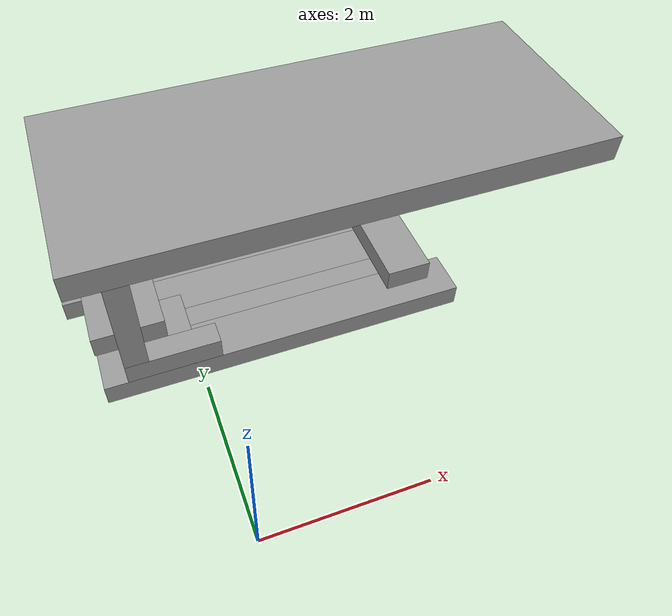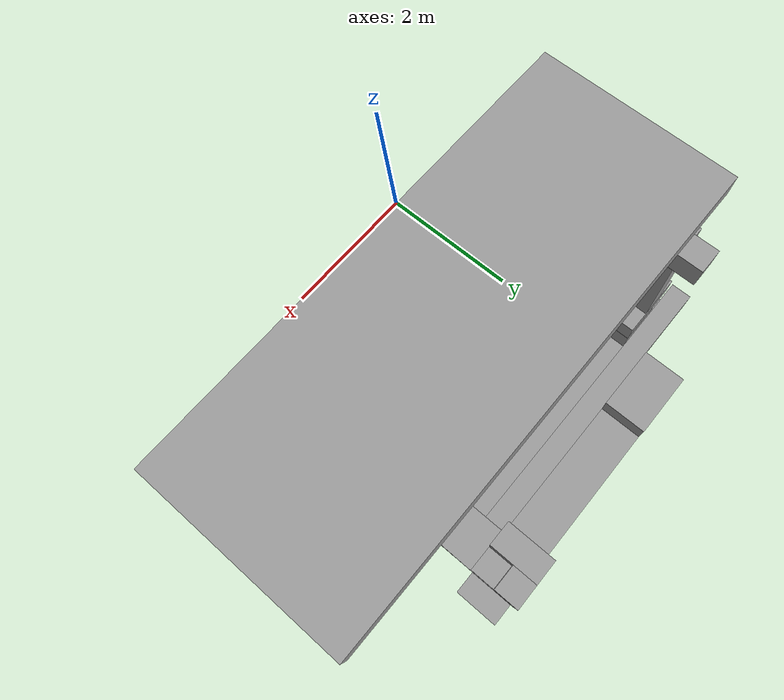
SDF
<sdf version="1.6">
 <world name="bt_world">
  <include><uri>model://sun</uri></include>
  <model name="obstacle_1927">
   <static>true</static>
   <pose>0.75 4.05 -0.15 0 0 0</pose>
   <link name="link">
    <collision name="collision"><geometry><box><size>4.5 0.3 0.3</size></box></geometry></collision>
    <visual name="visual">
     <geometry><box><size>4.5 0.3 0.3</size></box></geometry>
     <material><ambient>0.5 0.5 0.5 1</ambient><diffuse>0.6 0.6 0.6 1</diffuse></material>
    </visual>
   </link>
  </model>
  <model name="obstacle_1985">
   <static>true</static>
   <pose>1.65 2.6999999999999997 2.85 0 0 0</pose>
   <link name="link">
    <collision name="collision"><geometry><box><size>5.7 2.4 0.3</size></box></geometry></collision>
    <visual name="visual">
     <geometry><box><size>5.7 2.4 0.3</size></box></geometry>
     <material><ambient>0.5 0.5 0.5 1</ambient><diffuse>0.6 0.6 0.6 1</diffuse></material>
    </visual>
   </link>
  </model>
  <model name="obstacle_1990">
   <static>true</static>
   <pose>1.2 2.6999999999999997 -0.15 0 0 0</pose>
   <link name="link">
    <collision name="collision"><geometry><box><size>4.8 0.6 0.3</size></box></geometry></collision>
    <visual name="visual">
     <geometry><box><size>4.8 0.6 0.3</size></box></geometry>
     <material><ambient>0.5 0.5 0.5 1</ambient><diffuse>0.6 0.6 0.6 1</diffuse></material>
    </visual>
   </link>
  </model>
  <model name="obstacle_1991">
   <static>true</static>
   <pose>-0.75 3.3 0.44999999999999996 0 0 0</pose>
   <link name="link">
    <collision name="collision">
     <geometry><box><size>0.8999999999999999 1.2 0.3</size></box></geometry>
    </collision>
    <visual name="visual">
     <geometry><box><size>0.8999999999999999 1.2 0.3</size></box></geometry>
     <material><ambient>0.5 0.5 0.5 1</ambient><diffuse>0.6 0.6 0.6 1</diffuse></material>
    </visual>
   </link>
  </model>
  <model name="obstacle_1992">
   <static>true</static>
   <pose>-0.75 3.4499999999999997 -0.15 0 0 0</pose>
   <link name="link">
    <collision name="collision">
     <geometry><box><size>0.8999999999999999 0.8999999999999999 0.3</size></box></geometry>
    </collision>
    <visual name="visual">
     <geometry><box><size>0.8999999999999999 0.8999999999999999 0.3</size></box></geometry>
     <material><ambient>0.5 0.5 0.5 1</ambient><diffuse>0.6 0.6 0.6 1</diffuse></material>
    </visual>
   </link>
  </model>
  <model name="obstacle_2063">
   <static>true</static>
   <pose>-0.3 2.55 0.15 0 0 0</pose>
   <link name="link">
    <collision name="collision"><geometry><box><size>1.2 0.3 0.3</size></box></geometry></collision>
    <visual name="visual">
     <geometry><box><size>1.2 0.3 0.3</size></box></geometry>
     <material><ambient>0.5 0.5 0.5 1</ambient><diffuse>0.6 0.6 0.6 1</diffuse></material>
    </visual>
   </link>
  </model>
  <model name="obstacle_2064">
   <static>true</static>
   <pose>-0.75 2.55 1.3499999999999999 0 0 0</pose>
   <link name="link">
    <collision name="collision"><geometry><box><size>0.3 0.3 2.1</size></box></geometry></collision>
    <visual name="visual">
     <geometry><box><size>0.3 0.3 2.1</size></box></geometry>
     <material><ambient>0.5 0.5 0.5 1</ambient><diffuse>0.6 0.6 0.6 1</diffuse></material>
    </visual>
   </link>
  </model>
  <model name="obstacle_2065">
   <static>true</static>
   <pose>-0.75 3.3 -0.44999999999999996 0 0 0</pose>
   <link name="link">
    <collision name="collision"><geometry><box><size>0.3 1.2 0.3</size></box></geometry></collision>
    <visual name="visual">
     <geometry><box><size>0.3 1.2 0.3</size></box></geometry>
     <material><ambient>0.5 0.5 0.5 1</ambient><diffuse>0.6 0.6 0.6 1</diffuse></material>
    </visual>
   </link>
  </model>
  <model name="obstacle_2066">
   <static>true</static>
   <pose>-0.44999999999999996 3.0 0.15 0 0 0</pose>
   <link name="link">
    <collision name="collision">
     <geometry><box><size>0.8999999999999999 0.6 0.3</size></box></geometry>
    </collision>
    <visual name="visual">
     <geometry><box><size>0.8999999999999999 0.6 0.3</size></box></geometry>
     <material><ambient>0.5 0.5 0.5 1</ambient><diffuse>0.6 0.6 0.6 1</diffuse></material>
    </visual>
   </link>
  </model>
  <model name="obstacle_2067">
   <static>true</static>
   <pose>-0.75 3.3 1.3499999999999999 0 0 0</pose>
   <link name="link">
    <collision name="collision"><geometry><box><size>0.3 1.2 1.5</size></box></geometry></collision>
    <visual name="visual">
     <geometry><box><size>0.3 1.2 1.5</size></box></geometry>
     <material><ambient>0.5 0.5 0.5 1</ambient><diffuse>0.6 0.6 0.6 1</diffuse></material>
    </visual>
   </link>
  </model>
  <model name="obstacle_2068">
   <static>true</static>
   <pose>-0.75 2.85 2.25 0 0 0</pose>
   <link name="link">
    <collision name="collision"><geometry><box><size>0.3 0.3 0.3</size></box></geometry></collision>
    <visual name="visual">
     <geometry><box><size>0.3 0.3 0.3</size></box></geometry>
     <material><ambient>0.5 0.5 0.5 1</ambient><diffuse>0.6 0.6 0.6 1</diffuse></material>
    </visual>
   </link>
  </model>
  <model name="obstacle_2069">
   <static>true</static>
   <pose>-0.6 3.5999999999999996 0.15 0 0 0</pose>
   <link name="link">
    <collision name="collision"><geometry><box><size>0.6 0.6 0.3</size></box></geometry></collision>
    <visual name="visual">
     <geometry><box><size>0.6 0.6 0.3</size></box></geometry>
     <material><ambient>0.5 0.5 0.5 1</ambient><diffuse>0.6 0.6 0.6 1</diffuse></material>
    </visual>
   </link>
  </model>
  <model name="obstacle_2070">
   <static>true</static>
   <pose>-0.75 3.5999999999999996 2.25 0 0 0</pose>
   <link name="link">
    <collision name="collision"><geometry><box><size>0.3 0.6 0.3</size></box></geometry></collision>
    <visual name="visual">
     <geometry><box><size>0.3 0.6 0.3</size></box></geometry>
     <material><ambient>0.5 0.5 0.5 1</ambient><diffuse>0.6 0.6 0.6 1</diffuse></material>
    </visual>
   </link>
  </model>
  <model name="obstacle_2106">
   <static>true</static>
   <pose>-0.44999999999999996 3.4499999999999997 2.55 0 0 0</pose>
   <link name="link">
    <collision name="collision"><geometry><box><size>0.3 1.5 0.3</size></box></geometry></collision>
    <visual name="visual">
     <geometry><box><size>0.3 1.5 0.3</size></box></geometry>
     <material><ambient>0.5 0.5 0.5 1</ambient><diffuse>0.6 0.6 0.6 1</diffuse></material>
    </visual>
   </link>
  </model>
  <model name="obstacle_2133">
   <static>true</static>
   <pose>1.5 3.5999999999999996 -0.15 0 0 0</pose>
   <link name="link">
    <collision name="collision">
     <geometry><box><size>3.5999999999999996 0.6 0.3</size></box></geometry>
    </collision>
    <visual name="visual">
     <geometry><box><size>3.5999999999999996 0.6 0.3</size></box></geometry>
     <material><ambient>0.5 0.5 0.5 1</ambient><diffuse>0.6 0.6 0.6 1</diffuse></material>
    </visual>
   </link>
  </model>
  <model name="obstacle_2134">
   <static>true</static>
   <pose>0.15 4.5 0.15 0 0 0</pose>
   <link name="link">
    <collision name="collision">
     <geometry><box><size>0.8999999999999999 0.6 0.3</size></box></geometry>
    </collision>
    <visual name="visual">
     <geometry><box><size>0.8999999999999999 0.6 0.3</size></box></geometry>
     <material><ambient>0.5 0.5 0.5 1</ambient><diffuse>0.6 0.6 0.6 1</diffuse></material>
    </visual>
   </link>
  </model>
  <model name="obstacle_2154">
   <static>true</static>
   <pose>1.65 3.15 -0.15 0 0 0</pose>
   <link name="link">
    <collision name="collision"><geometry><box><size>3.3 0.3 0.3</size></box></geometry></collision>
    <visual name="visual">
     <geometry><box><size>3.3 0.3 0.3</size></box></geometry>
     <material><ambient>0.5 0.5 0.5 1</ambient><diffuse>0.6 0.6 0.6 1</diffuse></material>
    </visual>
   </link>
  </model>
  <model name="obstacle_2168">
   <static>true</static>
   <pose>1.95 4.5 -0.15 0 0 0</pose>
   <link name="link">
    <collision name="collision"><geometry><box><size>3.3 0.6 0.3</size></box></geometry></collision>
    <visual name="visual">
     <geometry><box><size>3.3 0.6 0.3</size></box></geometry>
     <material><ambient>0.5 0.5 0.5 1</ambient><diffuse>0.6 0.6 0.6 1</diffuse></material>
    </visual>
   </link>
  </model>
  <model name="obstacle_2294">
   <static>true</static>
   <pose>3.0 3.5999999999999996 0.15 0 0 0</pose>
   <link name="link">
    <collision name="collision">
     <geometry><box><size>0.6 1.7999999999999998 0.3</size></box></geometry>
    </collision>
    <visual name="visual">
     <geometry><box><size>0.6 1.7999999999999998 0.3</size></box></geometry>
     <material><ambient>0.5 0.5 0.5 1</ambient><diffuse>0.6 0.6 0.6 1</diffuse></material>
    </visual>
   </link>
  </model>
  <model name="obstacle_2295">
   <static>true</static>
   <pose>2.85 4.5 0.44999999999999996 0 0 0</pose>
   <link name="link">
    <collision name="collision"><geometry><box><size>0.3 0.6 0.3</size></box></geometry></collision>
    <visual name="visual">
     <geometry><box><size>0.3 0.6 0.3</size></box></geometry>
     <material><ambient>0.5 0.5 0.5 1</ambient><diffuse>0.6 0.6 0.6 1</diffuse></material>
    </visual>
   </link>
  </model>
  <model name="obstacle_2296">
   <static>true</static>
   <pose>2.85 4.5 1.65 0 0 0</pose>
   <link name="link">
    <collision name="collision"><geometry><box><size>0.3 0.6 0.3</size></box></geometry></collision>
    <visual name="visual">
     <geometry><box><size>0.3 0.6 0.3</size></box></geometry>
     <material><ambient>0.5 0.5 0.5 1</ambient><diffuse>0.6 0.6 0.6 1</diffuse></material>
    </visual>
   </link>
  </model>
  <model name="obstacle_2297">
   <static>true</static>
   <pose>3.0 4.6499999999999995 -0.44999999999999996 0 0 0</pose>
   <link name="link">
    <collision name="collision"><geometry><box><size>0.6 0.3 0.3</size></box></geometry></collision>
    <visual name="visual">
     <geometry><box><size>0.6 0.3 0.3</size></box></geometry>
     <material><ambient>0.5 0.5 0.5 1</ambient><diffuse>0.6 0.6 0.6 1</diffuse></material>
    </visual>
   </link>
  </model>
  <model name="obstacle_2298">
   <static>true</static>
   <pose>3.0 4.6499999999999995 1.05 0 0 0</pose>
   <link name="link">
    <collision name="collision">
     <geometry><box><size>0.6 0.3 0.8999999999999999</size></box></geometry>
    </collision>
    <visual name="visual">
     <geometry><box><size>0.6 0.3 0.8999999999999999</size></box></geometry>
     <material><ambient>0.5 0.5 0.5 1</ambient><diffuse>0.6 0.6 0.6 1</diffuse></material>
    </visual>
   </link>
  </model>
  <model name="obstacle_2335">
   <static>true</static>
   <pose>3.15 4.35 1.3499999999999999 0 0 0</pose>
   <link name="link">
    <collision name="collision"><geometry><box><size>0.3 0.3 0.3</size></box></geometry></collision>
    <visual name="visual">
     <geometry><box><size>0.3 0.3 0.3</size></box></geometry>
     <material><ambient>0.5 0.5 0.5 1</ambient><diffuse>0.6 0.6 0.6 1</diffuse></material>
    </visual>
   </link>
  </model>
  <model name="obstacle_2337">
   <static>true</static>
   <pose>3.15 4.6499999999999995 0.44999999999999996 0 0 0</pose>
   <link name="link">
    <collision name="collision"><geometry><box><size>0.3 0.3 0.3</size></box></geometry></collision>
    <visual name="visual">
     <geometry><box><size>0.3 0.3 0.3</size></box></geometry>
     <material><ambient>0.5 0.5 0.5 1</ambient><diffuse>0.6 0.6 0.6 1</diffuse></material>
    </visual>
   </link>
  </model>
  <model name="obstacle_2338">
   <static>true</static>
   <pose>3.15 4.6499999999999995 1.65 0 0 0</pose>
   <link name="link">
    <collision name="collision"><geometry><box><size>0.3 0.3 0.3</size></box></geometry></collision>
    <visual name="visual">
     <geometry><box><size>0.3 0.3 0.3</size></box></geometry>
     <material><ambient>0.5 0.5 0.5 1</ambient><diffuse>0.6 0.6 0.6 1</diffuse></material>
    </visual>
   </link>
  </model>
 </world>
</sdf>
